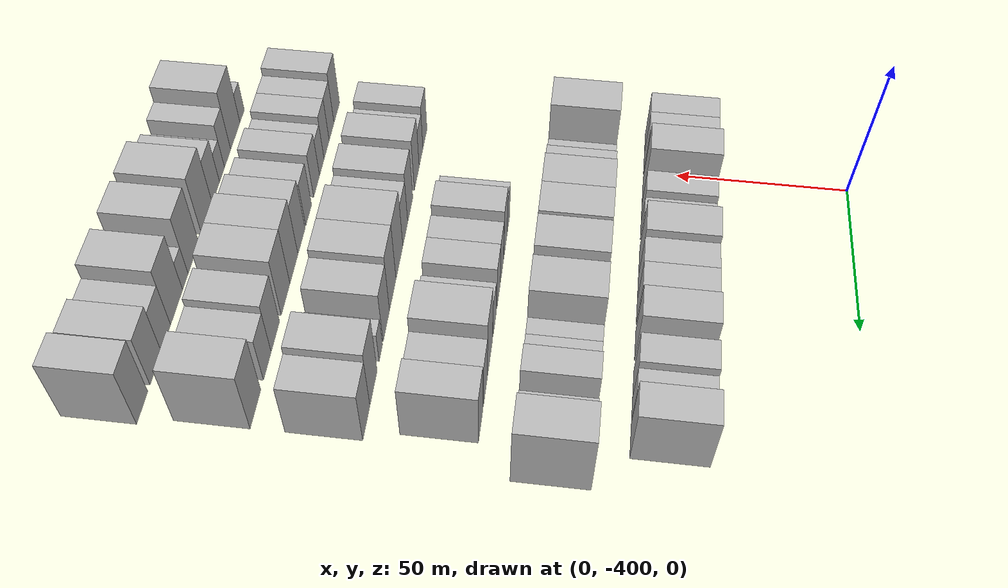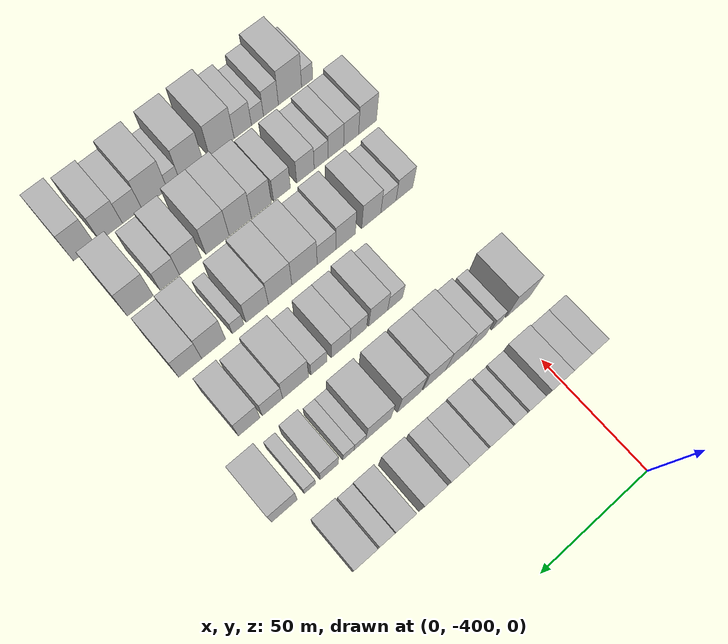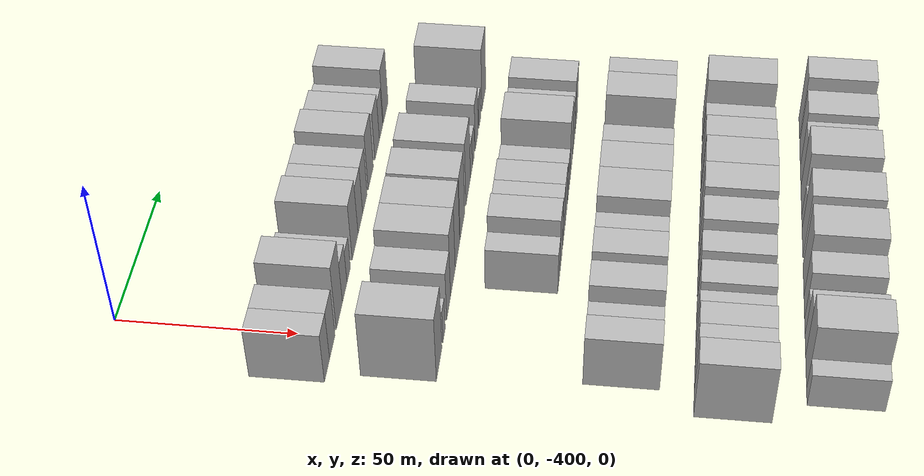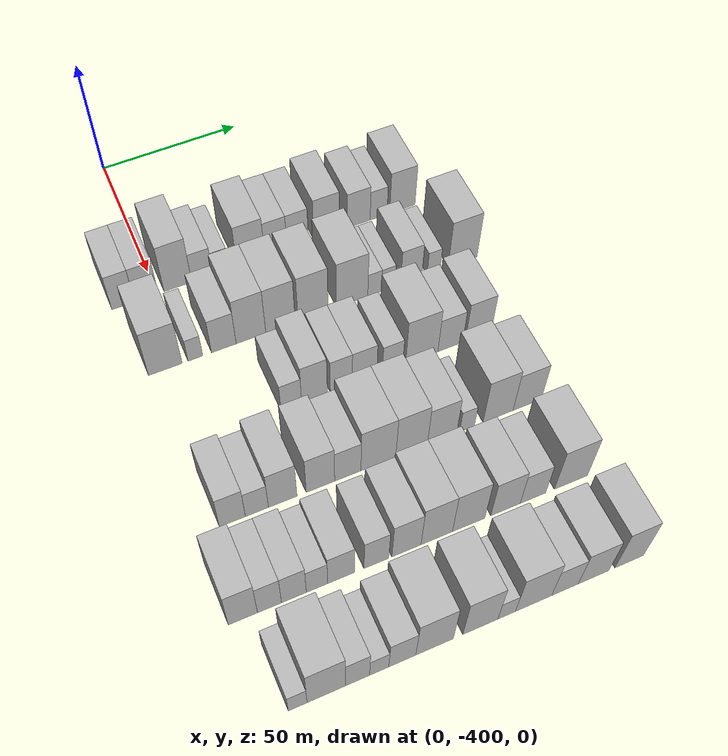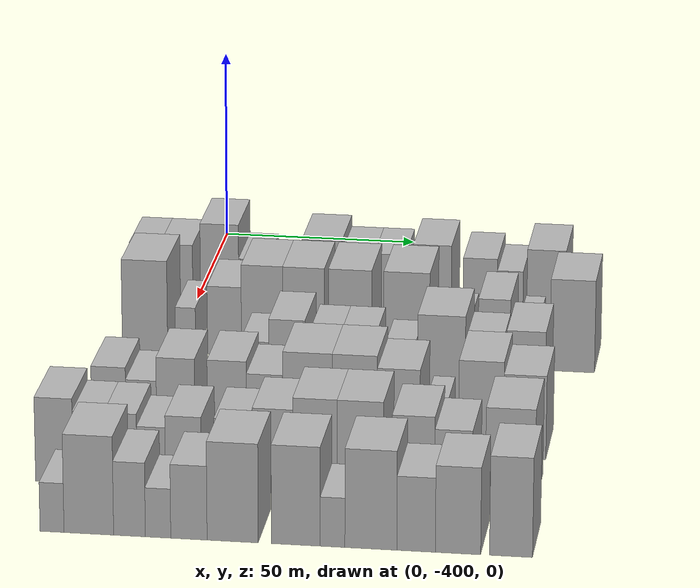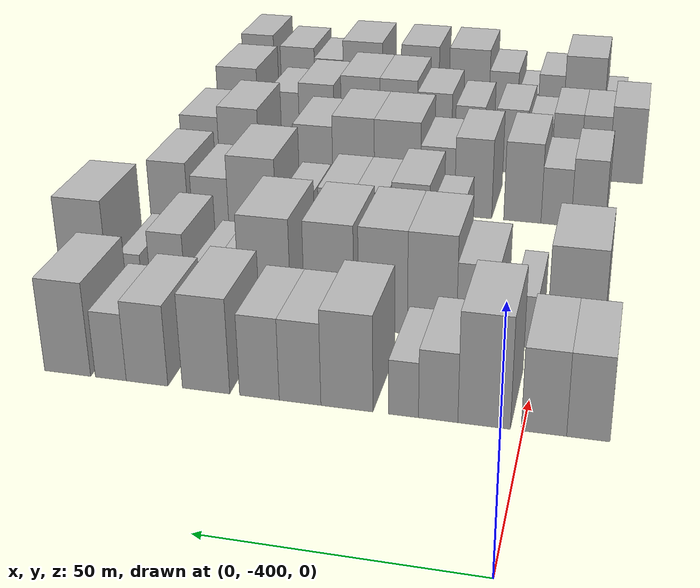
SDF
<sdf version="1.6">
 <world name="default">
  <model name="building_11">
   <static>1</static>
   <pose>50.0000 -411.8984 0 0.000000 0.000000 0.000000</pose>
   <link name="link">
    <pose>0 0 9.00 0 0 0</pose>
    <collision name="collision"><geometry><box><size>20.0000 7.8866 18.0000</size></box></geometry></collision>
    <visual name="visual">
     <cast_shadows>0</cast_shadows>
     <geometry><box><size>20.0000 7.8866 18.0000</size></box></geometry>
     <material>
      <script>
       <uri>model://HANNAS_wall/materials/scripts</uri>
       <uri>model://HANNAS_wall/materials/textures</uri>
       <name>vrc/HANNAS_wall</name>
      </script>
     </material>
    </visual>
   </link>
  </model>
  <model name="building_12">
   <static>1</static>
   <pose>50.0000 -403.7745 0 0.000000 0.000000 0.000000</pose>
   <link name="link">
    <pose>0 0 9.00 0 0 0</pose>
    <collision name="collision"><geometry><box><size>20.0000 8.3612 18.0000</size></box></geometry></collision>
    <visual name="visual">
     <cast_shadows>0</cast_shadows>
     <geometry><box><size>20.0000 8.3612 18.0000</size></box></geometry>
     <material>
      <script>
       <uri>model://HANNAS_wall/materials/scripts</uri>
       <uri>model://HANNAS_wall/materials/textures</uri>
       <name>vrc/HANNAS_wall</name>
      </script>
     </material>
    </visual>
   </link>
  </model>
  <model name="building_13">
   <static>1</static>
   <pose>50.0000 -392.6728 0 0.000000 0.000000 0.000000</pose>
   <link name="link">
    <pose>0 0 12.00 0 0 0</pose>
    <collision name="collision"><geometry><box><size>20.0000 9.8420 24.0000</size></box></geometry></collision>
    <visual name="visual">
     <cast_shadows>0</cast_shadows>
     <geometry><box><size>20.0000 9.8420 24.0000</size></box></geometry>
     <material>
      <script>
       <uri>model://HANNAS_wall/materials/scripts</uri>
       <uri>model://HANNAS_wall/materials/textures</uri>
       <name>vrc/HANNAS_wall</name>
      </script>
     </material>
    </visual>
   </link>
  </model>
  <model name="building_14">
   <static>1</static>
   <pose>50.0000 -384.0096 0 0.000000 0.000000 0.000000</pose>
   <link name="link">
    <pose>0 0 7.50 0 0 0</pose>
    <collision name="collision"><geometry><box><size>20.0000 7.4845 15.0000</size></box></geometry></collision>
    <visual name="visual">
     <cast_shadows>0</cast_shadows>
     <geometry><box><size>20.0000 7.4845 15.0000</size></box></geometry>
     <material>
      <script>
       <uri>model://HANNAS_wall/materials/scripts</uri>
       <uri>model://HANNAS_wall/materials/textures</uri>
       <name>vrc/HANNAS_wall</name>
      </script>
     </material>
    </visual>
   </link>
  </model>
  <model name="building_15">
   <static>1</static>
   <pose>50.0000 -377.3860 0 0.000000 0.000000 0.000000</pose>
   <link name="link">
    <pose>0 0 6.00 0 0 0</pose>
    <collision name="collision"><geometry><box><size>20.0000 5.7627 12.0000</size></box></geometry></collision>
    <visual name="visual">
     <cast_shadows>0</cast_shadows>
     <geometry><box><size>20.0000 5.7627 12.0000</size></box></geometry>
     <material>
      <script>
       <uri>model://HANNAS_wall/materials/scripts</uri>
       <uri>model://HANNAS_wall/materials/textures</uri>
       <name>vrc/HANNAS_wall</name>
      </script>
     </material>
    </visual>
   </link>
  </model>
  <model name="building_16">
   <static>1</static>
   <pose>50.0000 -366.4196 0 0.000000 0.000000 0.000000</pose>
   <link name="link">
    <pose>0 0 10.50 0 0 0</pose>
    <collision name="collision"><geometry><box><size>20.0000 10.1700 21.0000</size></box></geometry></collision>
    <visual name="visual">
     <cast_shadows>0</cast_shadows>
     <geometry><box><size>20.0000 10.1700 21.0000</size></box></geometry>
     <material>
      <script>
       <uri>model://HANNAS_wall/materials/scripts</uri>
       <uri>model://HANNAS_wall/materials/textures</uri>
       <name>vrc/HANNAS_wall</name>
      </script>
     </material>
    </visual>
   </link>
  </model>
  <model name="building_17">
   <static>1</static>
   <pose>50.0000 -357.2056 0 0.000000 0.000000 0.000000</pose>
   <link name="link">
    <pose>0 0 9.00 0 0 0</pose>
    <collision name="collision"><geometry><box><size>20.0000 8.2580 18.0000</size></box></geometry></collision>
    <visual name="visual">
     <cast_shadows>0</cast_shadows>
     <geometry><box><size>20.0000 8.2580 18.0000</size></box></geometry>
     <material>
      <script>
       <uri>model://HANNAS_wall/materials/scripts</uri>
       <uri>model://HANNAS_wall/materials/textures</uri>
       <name>vrc/HANNAS_wall</name>
      </script>
     </material>
    </visual>
   </link>
  </model>
  <model name="building_18">
   <static>1</static>
   <pose>50.0000 -349.0962 0 0.000000 0.000000 0.000000</pose>
   <link name="link">
    <pose>0 0 9.00 0 0 0</pose>
    <collision name="collision"><geometry><box><size>20.0000 7.9607 18.0000</size></box></geometry></collision>
    <visual name="visual">
     <cast_shadows>0</cast_shadows>
     <geometry><box><size>20.0000 7.9607 18.0000</size></box></geometry>
     <material>
      <script>
       <uri>model://HANNAS_wall/materials/scripts</uri>
       <uri>model://HANNAS_wall/materials/textures</uri>
       <name>vrc/HANNAS_wall</name>
      </script>
     </material>
    </visual>
   </link>
  </model>
  <model name="building_19">
   <static>1</static>
   <pose>50.0000 -338.2764 0 0.000000 0.000000 0.000000</pose>
   <link name="link">
    <pose>0 0 10.50 0 0 0</pose>
    <collision name="collision"><geometry><box><size>20.0000 9.6788 21.0000</size></box></geometry></collision>
    <visual name="visual">
     <cast_shadows>0</cast_shadows>
     <geometry><box><size>20.0000 9.6788 21.0000</size></box></geometry>
     <material>
      <script>
       <uri>model://HANNAS_wall/materials/scripts</uri>
       <uri>model://HANNAS_wall/materials/textures</uri>
       <name>vrc/HANNAS_wall</name>
      </script>
     </material>
    </visual>
   </link>
  </model>
  <model name="building_20">
   <static>1</static>
   <pose>50.0000 -326.1015 0 0.000000 0.000000 0.000000</pose>
   <link name="link">
    <pose>0 0 9.00 0 0 0</pose>
    <collision name="collision"><geometry><box><size>20.0000 8.6711 18.0000</size></box></geometry></collision>
    <visual name="visual">
     <cast_shadows>0</cast_shadows>
     <geometry><box><size>20.0000 8.6711 18.0000</size></box></geometry>
     <material>
      <script>
       <uri>model://HANNAS_wall/materials/scripts</uri>
       <uri>model://HANNAS_wall/materials/textures</uri>
       <name>vrc/HANNAS_wall</name>
      </script>
     </material>
    </visual>
   </link>
  </model>
  <model name="building_21">
   <static>1</static>
   <pose>50.0000 -318.5105 0 0.000000 0.000000 0.000000</pose>
   <link name="link">
    <pose>0 0 7.50 0 0 0</pose>
    <collision name="collision"><geometry><box><size>20.0000 6.5108 15.0000</size></box></geometry></collision>
    <visual name="visual">
     <cast_shadows>0</cast_shadows>
     <geometry><box><size>20.0000 6.5108 15.0000</size></box></geometry>
     <material>
      <script>
       <uri>model://HANNAS_wall/materials/scripts</uri>
       <uri>model://HANNAS_wall/materials/textures</uri>
       <name>vrc/HANNAS_wall</name>
      </script>
     </material>
    </visual>
   </link>
  </model>
  <model name="building_22">
   <static>1</static>
   <pose>50.0000 -309.3526 0 0.000000 0.000000 0.000000</pose>
   <link name="link">
    <pose>0 0 10.50 0 0 0</pose>
    <collision name="collision"><geometry><box><size>20.0000 9.8051 21.0000</size></box></geometry></collision>
    <visual name="visual">
     <cast_shadows>0</cast_shadows>
     <geometry><box><size>20.0000 9.8051 21.0000</size></box></geometry>
     <material>
      <script>
       <uri>model://HANNAS_wall/materials/scripts</uri>
       <uri>model://HANNAS_wall/materials/textures</uri>
       <name>vrc/HANNAS_wall</name>
      </script>
     </material>
    </visual>
   </link>
  </model>
  <model name="building_124">
   <static>1</static>
   <pose>79.0000 -406.9937 0 0.000000 0.000000 0.000000</pose>
   <link name="link">
    <pose>0 0 12.00 0 0 0</pose>
    <collision name="collision"><geometry><box><size>20.0000 11.4341 24.0000</size></box></geometry></collision>
    <visual name="visual">
     <cast_shadows>0</cast_shadows>
     <geometry><box><size>20.0000 11.4341 24.0000</size></box></geometry>
     <material>
      <script>
       <uri>model://HANNAS_wall/materials/scripts</uri>
       <uri>model://HANNAS_wall/materials/textures</uri>
       <name>vrc/HANNAS_wall</name>
      </script>
     </material>
    </visual>
   </link>
  </model>
  <model name="building_125">
   <static>1</static>
   <pose>79.0000 -396.7532 0 0.000000 0.000000 0.000000</pose>
   <link name="link">
    <pose>0 0 6.00 0 0 0</pose>
    <collision name="collision"><geometry><box><size>20.0000 5.0468 12.0000</size></box></geometry></collision>
    <visual name="visual">
     <cast_shadows>0</cast_shadows>
     <geometry><box><size>20.0000 5.0468 12.0000</size></box></geometry>
     <material>
      <script>
       <uri>model://HANNAS_wall/materials/scripts</uri>
       <uri>model://HANNAS_wall/materials/textures</uri>
       <name>vrc/HANNAS_wall</name>
      </script>
     </material>
    </visual>
   </link>
  </model>
  <model name="building_126">
   <static>1</static>
   <pose>79.0000 -386.9456 0 0.000000 0.000000 0.000000</pose>
   <link name="link">
    <pose>0 0 9.00 0 0 0</pose>
    <collision name="collision"><geometry><box><size>20.0000 8.5684 18.0000</size></box></geometry></collision>
    <visual name="visual">
     <cast_shadows>0</cast_shadows>
     <geometry><box><size>20.0000 8.5684 18.0000</size></box></geometry>
     <material>
      <script>
       <uri>model://HANNAS_wall/materials/scripts</uri>
       <uri>model://HANNAS_wall/materials/textures</uri>
       <name>vrc/HANNAS_wall</name>
      </script>
     </material>
    </visual>
   </link>
  </model>
  <model name="building_127">
   <static>1</static>
   <pose>79.0000 -377.4819 0 0.000000 0.000000 0.000000</pose>
   <link name="link">
    <pose>0 0 12.00 0 0 0</pose>
    <collision name="collision"><geometry><box><size>20.0000 10.3590 24.0000</size></box></geometry></collision>
    <visual name="visual">
     <cast_shadows>0</cast_shadows>
     <geometry><box><size>20.0000 10.3590 24.0000</size></box></geometry>
     <material>
      <script>
       <uri>model://HANNAS_wall/materials/scripts</uri>
       <uri>model://HANNAS_wall/materials/textures</uri>
       <name>vrc/HANNAS_wall</name>
      </script>
     </material>
    </visual>
   </link>
  </model>
  <model name="building_128">
   <static>1</static>
   <pose>79.0000 -367.0713 0 0.000000 0.000000 0.000000</pose>
   <link name="link">
    <pose>0 0 12.00 0 0 0</pose>
    <collision name="collision"><geometry><box><size>20.0000 10.4622 24.0000</size></box></geometry></collision>
    <visual name="visual">
     <cast_shadows>0</cast_shadows>
     <geometry><box><size>20.0000 10.4622 24.0000</size></box></geometry>
     <material>
      <script>
       <uri>model://HANNAS_wall/materials/scripts</uri>
       <uri>model://HANNAS_wall/materials/textures</uri>
       <name>vrc/HANNAS_wall</name>
      </script>
     </material>
    </visual>
   </link>
  </model>
  <model name="building_129">
   <static>1</static>
   <pose>79.0000 -355.4506 0 0.000000 0.000000 0.000000</pose>
   <link name="link">
    <pose>0 0 12.00 0 0 0</pose>
    <collision name="collision"><geometry><box><size>20.0000 10.7792 24.0000</size></box></geometry></collision>
    <visual name="visual">
     <cast_shadows>0</cast_shadows>
     <geometry><box><size>20.0000 10.7792 24.0000</size></box></geometry>
     <material>
      <script>
       <uri>model://HANNAS_wall/materials/scripts</uri>
       <uri>model://HANNAS_wall/materials/textures</uri>
       <name>vrc/HANNAS_wall</name>
      </script>
     </material>
    </visual>
   </link>
  </model>
  <model name="building_130">
   <static>1</static>
   <pose>79.0000 -341.3512 0 0.000000 0.000000 0.000000</pose>
   <link name="link">
    <pose>0 0 12.00 0 0 0</pose>
    <collision name="collision"><geometry><box><size>20.0000 11.4196 24.0000</size></box></geometry></collision>
    <visual name="visual">
     <cast_shadows>0</cast_shadows>
     <geometry><box><size>20.0000 11.4196 24.0000</size></box></geometry>
     <material>
      <script>
       <uri>model://HANNAS_wall/materials/scripts</uri>
       <uri>model://HANNAS_wall/materials/textures</uri>
       <name>vrc/HANNAS_wall</name>
      </script>
     </material>
    </visual>
   </link>
  </model>
  <model name="building_131">
   <static>1</static>
   <pose>79.0000 -333.0664 0 0.000000 0.000000 0.000000</pose>
   <link name="link">
    <pose>0 0 6.00 0 0 0</pose>
    <collision name="collision"><geometry><box><size>20.0000 5.1501 12.0000</size></box></geometry></collision>
    <visual name="visual">
     <cast_shadows>0</cast_shadows>
     <geometry><box><size>20.0000 5.1501 12.0000</size></box></geometry>
     <material>
      <script>
       <uri>model://HANNAS_wall/materials/scripts</uri>
       <uri>model://HANNAS_wall/materials/textures</uri>
       <name>vrc/HANNAS_wall</name>
      </script>
     </material>
    </visual>
   </link>
  </model>
  <model name="building_132">
   <static>1</static>
   <pose>79.0000 -328.0197 0 0.000000 0.000000 0.000000</pose>
   <link name="link">
    <pose>0 0 6.00 0 0 0</pose>
    <collision name="collision"><geometry><box><size>20.0000 4.9432 12.0000</size></box></geometry></collision>
    <visual name="visual">
     <cast_shadows>0</cast_shadows>
     <geometry><box><size>20.0000 4.9432 12.0000</size></box></geometry>
     <material>
      <script>
       <uri>model://HANNAS_wall/materials/scripts</uri>
       <uri>model://HANNAS_wall/materials/textures</uri>
       <name>vrc/HANNAS_wall</name>
      </script>
     </material>
    </visual>
   </link>
  </model>
  <model name="building_133">
   <static>1</static>
   <pose>79.0000 -319.5810 0 0.000000 0.000000 0.000000</pose>
   <link name="link">
    <pose>0 0 9.00 0 0 0</pose>
    <collision name="collision"><geometry><box><size>20.0000 7.9342 18.0000</size></box></geometry></collision>
    <visual name="visual">
     <cast_shadows>0</cast_shadows>
     <geometry><box><size>20.0000 7.9342 18.0000</size></box></geometry>
     <material>
      <script>
       <uri>model://HANNAS_wall/materials/scripts</uri>
       <uri>model://HANNAS_wall/materials/textures</uri>
       <name>vrc/HANNAS_wall</name>
      </script>
     </material>
    </visual>
   </link>
  </model>
  <model name="building_134">
   <static>1</static>
   <pose>79.0000 -311.1672 0 0.000000 0.000000 0.000000</pose>
   <link name="link">
    <pose>0 0 6.00 0 0 0</pose>
    <collision name="collision"><geometry><box><size>20.0000 4.8934 12.0000</size></box></geometry></collision>
    <visual name="visual">
     <cast_shadows>0</cast_shadows>
     <geometry><box><size>20.0000 4.8934 12.0000</size></box></geometry>
     <material>
      <script>
       <uri>model://HANNAS_wall/materials/scripts</uri>
       <uri>model://HANNAS_wall/materials/textures</uri>
       <name>vrc/HANNAS_wall</name>
      </script>
     </material>
    </visual>
   </link>
  </model>
  <model name="building_135">
   <static>1</static>
   <pose>79.0000 -300.2051 0 0.000000 0.000000 0.000000</pose>
   <link name="link">
    <pose>0 0 12.00 0 0 0</pose>
    <collision name="collision"><geometry><box><size>20.0000 11.0306 24.0000</size></box></geometry></collision>
    <visual name="visual">
     <cast_shadows>0</cast_shadows>
     <geometry><box><size>20.0000 11.0306 24.0000</size></box></geometry>
     <material>
      <script>
       <uri>model://HANNAS_wall/materials/scripts</uri>
       <uri>model://HANNAS_wall/materials/textures</uri>
       <name>vrc/HANNAS_wall</name>
      </script>
     </material>
    </visual>
   </link>
  </model>
  <model name="building_238">
   <static>1</static>
   <pose>108.0000 -375.0337 0 0.000000 0.000000 0.000000</pose>
   <link name="link">
    <pose>0 0 7.50 0 0 0</pose>
    <collision name="collision"><geometry><box><size>20.0000 7.0417 15.0000</size></box></geometry></collision>
    <visual name="visual">
     <cast_shadows>0</cast_shadows>
     <geometry><box><size>20.0000 7.0417 15.0000</size></box></geometry>
     <material>
      <script>
       <uri>model://HANNAS_wall/materials/scripts</uri>
       <uri>model://HANNAS_wall/materials/textures</uri>
       <name>vrc/HANNAS_wall</name>
      </script>
     </material>
    </visual>
   </link>
  </model>
  <model name="building_239">
   <static>1</static>
   <pose>108.0000 -367.0894 0 0.000000 0.000000 0.000000</pose>
   <link name="link">
    <pose>0 0 10.50 0 0 0</pose>
    <collision name="collision"><geometry><box><size>20.0000 8.8468 21.0000</size></box></geometry></collision>
    <visual name="visual">
     <cast_shadows>0</cast_shadows>
     <geometry><box><size>20.0000 8.8468 21.0000</size></box></geometry>
     <material>
      <script>
       <uri>model://HANNAS_wall/materials/scripts</uri>
       <uri>model://HANNAS_wall/materials/textures</uri>
       <name>vrc/HANNAS_wall</name>
      </script>
     </material>
    </visual>
   </link>
  </model>
  <model name="building_240">
   <static>1</static>
   <pose>108.0000 -357.8525 0 0.000000 0.000000 0.000000</pose>
   <link name="link">
    <pose>0 0 9.00 0 0 0</pose>
    <collision name="collision"><geometry><box><size>20.0000 7.6271 18.0000</size></box></geometry></collision>
    <visual name="visual">
     <cast_shadows>0</cast_shadows>
     <geometry><box><size>20.0000 7.6271 18.0000</size></box></geometry>
     <material>
      <script>
       <uri>model://HANNAS_wall/materials/scripts</uri>
       <uri>model://HANNAS_wall/materials/textures</uri>
       <name>vrc/HANNAS_wall</name>
      </script>
     </material>
    </visual>
   </link>
  </model>
  <model name="building_241">
   <static>1</static>
   <pose>108.0000 -349.7560 0 0.000000 0.000000 0.000000</pose>
   <link name="link">
    <pose>0 0 9.00 0 0 0</pose>
    <collision name="collision"><geometry><box><size>20.0000 8.5658 18.0000</size></box></geometry></collision>
    <visual name="visual">
     <cast_shadows>0</cast_shadows>
     <geometry><box><size>20.0000 8.5658 18.0000</size></box></geometry>
     <material>
      <script>
       <uri>model://HANNAS_wall/materials/scripts</uri>
       <uri>model://HANNAS_wall/materials/textures</uri>
       <name>vrc/HANNAS_wall</name>
      </script>
     </material>
    </visual>
   </link>
  </model>
  <model name="building_242">
   <static>1</static>
   <pose>108.0000 -339.8674 0 0.000000 0.000000 0.000000</pose>
   <link name="link">
    <pose>0 0 7.50 0 0 0</pose>
    <collision name="collision"><geometry><box><size>20.0000 7.2113 15.0000</size></box></geometry></collision>
    <visual name="visual">
     <cast_shadows>0</cast_shadows>
     <geometry><box><size>20.0000 7.2113 15.0000</size></box></geometry>
     <material>
      <script>
       <uri>model://HANNAS_wall/materials/scripts</uri>
       <uri>model://HANNAS_wall/materials/textures</uri>
       <name>vrc/HANNAS_wall</name>
      </script>
     </material>
    </visual>
   </link>
  </model>
  <model name="building_243">
   <static>1</static>
   <pose>108.0000 -329.4605 0 0.000000 0.000000 0.000000</pose>
   <link name="link">
    <pose>0 0 12.00 0 0 0</pose>
    <collision name="collision"><geometry><box><size>20.0000 11.6025 24.0000</size></box></geometry></collision>
    <visual name="visual">
     <cast_shadows>0</cast_shadows>
     <geometry><box><size>20.0000 11.6025 24.0000</size></box></geometry>
     <material>
      <script>
       <uri>model://HANNAS_wall/materials/scripts</uri>
       <uri>model://HANNAS_wall/materials/textures</uri>
       <name>vrc/HANNAS_wall</name>
      </script>
     </material>
    </visual>
   </link>
  </model>
  <model name="building_244">
   <static>1</static>
   <pose>108.0000 -319.1672 0 0.000000 0.000000 0.000000</pose>
   <link name="link">
    <pose>0 0 9.00 0 0 0</pose>
    <collision name="collision"><geometry><box><size>20.0000 8.9841 18.0000</size></box></geometry></collision>
    <visual name="visual">
     <cast_shadows>0</cast_shadows>
     <geometry><box><size>20.0000 8.9841 18.0000</size></box></geometry>
     <material>
      <script>
       <uri>model://HANNAS_wall/materials/scripts</uri>
       <uri>model://HANNAS_wall/materials/textures</uri>
       <name>vrc/HANNAS_wall</name>
      </script>
     </material>
    </visual>
   </link>
  </model>
  <model name="building_245">
   <static>1</static>
   <pose>108.0000 -308.9551 0 0.000000 0.000000 0.000000</pose>
   <link name="link">
    <pose>0 0 10.50 0 0 0</pose>
    <collision name="collision"><geometry><box><size>20.0000 9.4402 21.0000</size></box></geometry></collision>
    <visual name="visual">
     <cast_shadows>0</cast_shadows>
     <geometry><box><size>20.0000 9.4402 21.0000</size></box></geometry>
     <material>
      <script>
       <uri>model://HANNAS_wall/materials/scripts</uri>
       <uri>model://HANNAS_wall/materials/textures</uri>
       <name>vrc/HANNAS_wall</name>
      </script>
     </material>
    </visual>
   </link>
  </model>
  <model name="building_345">
   <static>1</static>
   <pose>137.0000 -405.7316 0 0.000000 0.000000 0.000000</pose>
   <link name="link">
    <pose>0 0 9.00 0 0 0</pose>
    <collision name="collision"><geometry><box><size>20.0000 8.2675 18.0000</size></box></geometry></collision>
    <visual name="visual">
     <cast_shadows>0</cast_shadows>
     <geometry><box><size>20.0000 8.2675 18.0000</size></box></geometry>
     <material>
      <script>
       <uri>model://HANNAS_wall/materials/scripts</uri>
       <uri>model://HANNAS_wall/materials/textures</uri>
       <name>vrc/HANNAS_wall</name>
      </script>
     </material>
    </visual>
   </link>
  </model>
  <model name="building_346">
   <static>1</static>
   <pose>137.0000 -397.8987 0 0.000000 0.000000 0.000000</pose>
   <link name="link">
    <pose>0 0 7.50 0 0 0</pose>
    <collision name="collision"><geometry><box><size>20.0000 7.3982 15.0000</size></box></geometry></collision>
    <visual name="visual">
     <cast_shadows>0</cast_shadows>
     <geometry><box><size>20.0000 7.3982 15.0000</size></box></geometry>
     <material>
      <script>
       <uri>model://HANNAS_wall/materials/scripts</uri>
       <uri>model://HANNAS_wall/materials/textures</uri>
       <name>vrc/HANNAS_wall</name>
      </script>
     </material>
    </visual>
   </link>
  </model>
  <model name="building_347">
   <static>1</static>
   <pose>137.0000 -389.5832 0 0.000000 0.000000 0.000000</pose>
   <link name="link">
    <pose>0 0 10.50 0 0 0</pose>
    <collision name="collision"><geometry><box><size>20.0000 9.2328 21.0000</size></box></geometry></collision>
    <visual name="visual">
     <cast_shadows>0</cast_shadows>
     <geometry><box><size>20.0000 9.2328 21.0000</size></box></geometry>
     <material>
      <script>
       <uri>model://HANNAS_wall/materials/scripts</uri>
       <uri>model://HANNAS_wall/materials/textures</uri>
       <name>vrc/HANNAS_wall</name>
      </script>
     </material>
    </visual>
   </link>
  </model>
  <model name="building_348">
   <static>1</static>
   <pose>137.0000 -377.2858 0 0.000000 0.000000 0.000000</pose>
   <link name="link">
    <pose>0 0 10.50 0 0 0</pose>
    <collision name="collision"><geometry><box><size>20.0000 9.3620 21.0000</size></box></geometry></collision>
    <visual name="visual">
     <cast_shadows>0</cast_shadows>
     <geometry><box><size>20.0000 9.3620 21.0000</size></box></geometry>
     <material>
      <script>
       <uri>model://HANNAS_wall/materials/scripts</uri>
       <uri>model://HANNAS_wall/materials/textures</uri>
       <name>vrc/HANNAS_wall</name>
      </script>
     </material>
    </visual>
   </link>
  </model>
  <model name="building_349">
   <static>1</static>
   <pose>137.0000 -368.2492 0 0.000000 0.000000 0.000000</pose>
   <link name="link">
    <pose>0 0 9.00 0 0 0</pose>
    <collision name="collision"><geometry><box><size>20.0000 8.7112 18.0000</size></box></geometry></collision>
    <visual name="visual">
     <cast_shadows>0</cast_shadows>
     <geometry><box><size>20.0000 8.7112 18.0000</size></box></geometry>
     <material>
      <script>
       <uri>model://HANNAS_wall/materials/scripts</uri>
       <uri>model://HANNAS_wall/materials/textures</uri>
       <name>vrc/HANNAS_wall</name>
      </script>
     </material>
    </visual>
   </link>
  </model>
  <model name="building_350">
   <static>1</static>
   <pose>137.0000 -358.0191 0 0.000000 0.000000 0.000000</pose>
   <link name="link">
    <pose>0 0 12.00 0 0 0</pose>
    <collision name="collision"><geometry><box><size>20.0000 11.7490 24.0000</size></box></geometry></collision>
    <visual name="visual">
     <cast_shadows>0</cast_shadows>
     <geometry><box><size>20.0000 11.7490 24.0000</size></box></geometry>
     <material>
      <script>
       <uri>model://HANNAS_wall/materials/scripts</uri>
       <uri>model://HANNAS_wall/materials/textures</uri>
       <name>vrc/HANNAS_wall</name>
      </script>
     </material>
    </visual>
   </link>
  </model>
  <model name="building_351">
   <static>1</static>
   <pose>137.0000 -346.7696 0 0.000000 0.000000 0.000000</pose>
   <link name="link">
    <pose>0 0 12.00 0 0 0</pose>
    <collision name="collision"><geometry><box><size>20.0000 10.7500 24.0000</size></box></geometry></collision>
    <visual name="visual">
     <cast_shadows>0</cast_shadows>
     <geometry><box><size>20.0000 10.7500 24.0000</size></box></geometry>
     <material>
      <script>
       <uri>model://HANNAS_wall/materials/scripts</uri>
       <uri>model://HANNAS_wall/materials/textures</uri>
       <name>vrc/HANNAS_wall</name>
      </script>
     </material>
    </visual>
   </link>
  </model>
  <model name="building_352">
   <static>1</static>
   <pose>137.0000 -336.3231 0 0.000000 0.000000 0.000000</pose>
   <link name="link">
    <pose>0 0 10.50 0 0 0</pose>
    <collision name="collision"><geometry><box><size>20.0000 10.1429 21.0000</size></box></geometry></collision>
    <visual name="visual">
     <cast_shadows>0</cast_shadows>
     <geometry><box><size>20.0000 10.1429 21.0000</size></box></geometry>
     <material>
      <script>
       <uri>model://HANNAS_wall/materials/scripts</uri>
       <uri>model://HANNAS_wall/materials/textures</uri>
       <name>vrc/HANNAS_wall</name>
      </script>
     </material>
    </visual>
   </link>
  </model>
  <model name="building_353">
   <static>1</static>
   <pose>137.0000 -327.6669 0 0.000000 0.000000 0.000000</pose>
   <link name="link">
    <pose>0 0 6.00 0 0 0</pose>
    <collision name="collision"><geometry><box><size>20.0000 5.1695 12.0000</size></box></geometry></collision>
    <visual name="visual">
     <cast_shadows>0</cast_shadows>
     <geometry><box><size>20.0000 5.1695 12.0000</size></box></geometry>
     <material>
      <script>
       <uri>model://HANNAS_wall/materials/scripts</uri>
       <uri>model://HANNAS_wall/materials/textures</uri>
       <name>vrc/HANNAS_wall</name>
      </script>
     </material>
    </visual>
   </link>
  </model>
  <model name="building_354">
   <static>1</static>
   <pose>137.0000 -316.7724 0 0.000000 0.000000 0.000000</pose>
   <link name="link">
    <pose>0 0 12.00 0 0 0</pose>
    <collision name="collision"><geometry><box><size>20.0000 10.6195 24.0000</size></box></geometry></collision>
    <visual name="visual">
     <cast_shadows>0</cast_shadows>
     <geometry><box><size>20.0000 10.6195 24.0000</size></box></geometry>
     <material>
      <script>
       <uri>model://HANNAS_wall/materials/scripts</uri>
       <uri>model://HANNAS_wall/materials/textures</uri>
       <name>vrc/HANNAS_wall</name>
      </script>
     </material>
    </visual>
   </link>
  </model>
  <model name="building_355">
   <static>1</static>
   <pose>137.0000 -306.4292 0 0.000000 0.000000 0.000000</pose>
   <link name="link">
    <pose>0 0 10.50 0 0 0</pose>
    <collision name="collision"><geometry><box><size>20.0000 10.0669 21.0000</size></box></geometry></collision>
    <visual name="visual">
     <cast_shadows>0</cast_shadows>
     <geometry><box><size>20.0000 10.0669 21.0000</size></box></geometry>
     <material>
      <script>
       <uri>model://HANNAS_wall/materials/scripts</uri>
       <uri>model://HANNAS_wall/materials/textures</uri>
       <name>vrc/HANNAS_wall</name>
      </script>
     </material>
    </visual>
   </link>
  </model>
  <model name="building_462">
   <static>1</static>
   <pose>166.0000 -413.4314 0 0.000000 0.000000 0.000000</pose>
   <link name="link">
    <pose>0 0 10.50 0 0 0</pose>
    <collision name="collision"><geometry><box><size>20.0000 8.8658 21.0000</size></box></geometry></collision>
    <visual name="visual">
     <cast_shadows>0</cast_shadows>
     <geometry><box><size>20.0000 8.8658 21.0000</size></box></geometry>
     <material>
      <script>
       <uri>model://HANNAS_wall/materials/scripts</uri>
       <uri>model://HANNAS_wall/materials/textures</uri>
       <name>vrc/HANNAS_wall</name>
      </script>
     </material>
    </visual>
   </link>
  </model>
  <model name="building_463">
   <static>1</static>
   <pose>166.0000 -405.3016 0 0.000000 0.000000 0.000000</pose>
   <link name="link">
    <pose>0 0 9.00 0 0 0</pose>
    <collision name="collision"><geometry><box><size>20.0000 7.3937 18.0000</size></box></geometry></collision>
    <visual name="visual">
     <cast_shadows>0</cast_shadows>
     <geometry><box><size>20.0000 7.3937 18.0000</size></box></geometry>
     <material>
      <script>
       <uri>model://HANNAS_wall/materials/scripts</uri>
       <uri>model://HANNAS_wall/materials/textures</uri>
       <name>vrc/HANNAS_wall</name>
      </script>
     </material>
    </visual>
   </link>
  </model>
  <model name="building_464">
   <static>1</static>
   <pose>166.0000 -397.7545 0 0.000000 0.000000 0.000000</pose>
   <link name="link">
    <pose>0 0 9.00 0 0 0</pose>
    <collision name="collision"><geometry><box><size>20.0000 7.7004 18.0000</size></box></geometry></collision>
    <visual name="visual">
     <cast_shadows>0</cast_shadows>
     <geometry><box><size>20.0000 7.7004 18.0000</size></box></geometry>
     <material>
      <script>
       <uri>model://HANNAS_wall/materials/scripts</uri>
       <uri>model://HANNAS_wall/materials/textures</uri>
       <name>vrc/HANNAS_wall</name>
      </script>
     </material>
    </visual>
   </link>
  </model>
  <model name="building_465">
   <static>1</static>
   <pose>166.0000 -390.5687 0 0.000000 0.000000 0.000000</pose>
   <link name="link">
    <pose>0 0 7.50 0 0 0</pose>
    <collision name="collision"><geometry><box><size>20.0000 6.6713 15.0000</size></box></geometry></collision>
    <visual name="visual">
     <cast_shadows>0</cast_shadows>
     <geometry><box><size>20.0000 6.6713 15.0000</size></box></geometry>
     <material>
      <script>
       <uri>model://HANNAS_wall/materials/scripts</uri>
       <uri>model://HANNAS_wall/materials/textures</uri>
       <name>vrc/HANNAS_wall</name>
      </script>
     </material>
    </visual>
   </link>
  </model>
  <model name="building_466">
   <static>1</static>
   <pose>166.0000 -383.0170 0 0.000000 0.000000 0.000000</pose>
   <link name="link">
    <pose>0 0 9.00 0 0 0</pose>
    <collision name="collision"><geometry><box><size>20.0000 8.4320 18.0000</size></box></geometry></collision>
    <visual name="visual">
     <cast_shadows>0</cast_shadows>
     <geometry><box><size>20.0000 8.4320 18.0000</size></box></geometry>
     <material>
      <script>
       <uri>model://HANNAS_wall/materials/scripts</uri>
       <uri>model://HANNAS_wall/materials/textures</uri>
       <name>vrc/HANNAS_wall</name>
      </script>
     </material>
    </visual>
   </link>
  </model>
  <model name="building_467">
   <static>1</static>
   <pose>166.0000 -371.8174 0 0.000000 0.000000 0.000000</pose>
   <link name="link">
    <pose>0 0 9.00 0 0 0</pose>
    <collision name="collision"><geometry><box><size>20.0000 7.9673 18.0000</size></box></geometry></collision>
    <visual name="visual">
     <cast_shadows>0</cast_shadows>
     <geometry><box><size>20.0000 7.9673 18.0000</size></box></geometry>
     <material>
      <script>
       <uri>model://HANNAS_wall/materials/scripts</uri>
       <uri>model://HANNAS_wall/materials/textures</uri>
       <name>vrc/HANNAS_wall</name>
      </script>
     </material>
    </visual>
   </link>
  </model>
  <model name="building_468">
   <static>1</static>
   <pose>166.0000 -362.1292 0 0.000000 0.000000 0.000000</pose>
   <link name="link">
    <pose>0 0 10.50 0 0 0</pose>
    <collision name="collision"><geometry><box><size>20.0000 9.4091 21.0000</size></box></geometry></collision>
    <visual name="visual">
     <cast_shadows>0</cast_shadows>
     <geometry><box><size>20.0000 9.4091 21.0000</size></box></geometry>
     <material>
      <script>
       <uri>model://HANNAS_wall/materials/scripts</uri>
       <uri>model://HANNAS_wall/materials/textures</uri>
       <name>vrc/HANNAS_wall</name>
      </script>
     </material>
    </visual>
   </link>
  </model>
  <model name="building_469">
   <static>1</static>
   <pose>166.0000 -352.2601 0 0.000000 0.000000 0.000000</pose>
   <link name="link">
    <pose>0 0 12.00 0 0 0</pose>
    <collision name="collision"><geometry><box><size>20.0000 10.3290 24.0000</size></box></geometry></collision>
    <visual name="visual">
     <cast_shadows>0</cast_shadows>
     <geometry><box><size>20.0000 10.3290 24.0000</size></box></geometry>
     <material>
      <script>
       <uri>model://HANNAS_wall/materials/scripts</uri>
       <uri>model://HANNAS_wall/materials/textures</uri>
       <name>vrc/HANNAS_wall</name>
      </script>
     </material>
    </visual>
   </link>
  </model>
  <model name="building_470">
   <static>1</static>
   <pose>166.0000 -341.7164 0 0.000000 0.000000 0.000000</pose>
   <link name="link">
    <pose>0 0 12.00 0 0 0</pose>
    <collision name="collision"><geometry><box><size>20.0000 10.7585 24.0000</size></box></geometry></collision>
    <visual name="visual">
     <cast_shadows>0</cast_shadows>
     <geometry><box><size>20.0000 10.7585 24.0000</size></box></geometry>
     <material>
      <script>
       <uri>model://HANNAS_wall/materials/scripts</uri>
       <uri>model://HANNAS_wall/materials/textures</uri>
       <name>vrc/HANNAS_wall</name>
      </script>
     </material>
    </visual>
   </link>
  </model>
  <model name="building_471">
   <static>1</static>
   <pose>166.0000 -329.3834 0 0.000000 0.000000 0.000000</pose>
   <link name="link">
    <pose>0 0 10.50 0 0 0</pose>
    <collision name="collision"><geometry><box><size>20.0000 9.9075 21.0000</size></box></geometry></collision>
    <visual name="visual">
     <cast_shadows>0</cast_shadows>
     <geometry><box><size>20.0000 9.9075 21.0000</size></box></geometry>
     <material>
      <script>
       <uri>model://HANNAS_wall/materials/scripts</uri>
       <uri>model://HANNAS_wall/materials/textures</uri>
       <name>vrc/HANNAS_wall</name>
      </script>
     </material>
    </visual>
   </link>
  </model>
  <model name="building_472">
   <static>1</static>
   <pose>166.0000 -320.0710 0 0.000000 0.000000 0.000000</pose>
   <link name="link">
    <pose>0 0 9.00 0 0 0</pose>
    <collision name="collision"><geometry><box><size>20.0000 8.7173 18.0000</size></box></geometry></collision>
    <visual name="visual">
     <cast_shadows>0</cast_shadows>
     <geometry><box><size>20.0000 8.7173 18.0000</size></box></geometry>
     <material>
      <script>
       <uri>model://HANNAS_wall/materials/scripts</uri>
       <uri>model://HANNAS_wall/materials/textures</uri>
       <name>vrc/HANNAS_wall</name>
      </script>
     </material>
    </visual>
   </link>
  </model>
  <model name="building_473">
   <static>1</static>
   <pose>166.0000 -306.9715 0 0.000000 0.000000 0.000000</pose>
   <link name="link">
    <pose>0 0 12.00 0 0 0</pose>
    <collision name="collision"><geometry><box><size>20.0000 11.4817 24.0000</size></box></geometry></collision>
    <visual name="visual">
     <cast_shadows>0</cast_shadows>
     <geometry><box><size>20.0000 11.4817 24.0000</size></box></geometry>
     <material>
      <script>
       <uri>model://HANNAS_wall/materials/scripts</uri>
       <uri>model://HANNAS_wall/materials/textures</uri>
       <name>vrc/HANNAS_wall</name>
      </script>
     </material>
    </visual>
   </link>
  </model>
  <model name="building_581">
   <static>1</static>
   <pose>195.0000 -408.4810 0 0.000000 0.000000 0.000000</pose>
   <link name="link">
    <pose>0 0 6.00 0 0 0</pose>
    <collision name="collision"><geometry><box><size>20.0000 5.5385 12.0000</size></box></geometry></collision>
    <visual name="visual">
     <cast_shadows>0</cast_shadows>
     <geometry><box><size>20.0000 5.5385 12.0000</size></box></geometry>
     <material>
      <script>
       <uri>model://HANNAS_wall/materials/scripts</uri>
       <uri>model://HANNAS_wall/materials/textures</uri>
       <name>vrc/HANNAS_wall</name>
      </script>
     </material>
    </visual>
   </link>
  </model>
  <model name="building_582">
   <static>1</static>
   <pose>195.0000 -400.0008 0 0.000000 0.000000 0.000000</pose>
   <link name="link">
    <pose>0 0 12.00 0 0 0</pose>
    <collision name="collision"><geometry><box><size>20.0000 11.4220 24.0000</size></box></geometry></collision>
    <visual name="visual">
     <cast_shadows>0</cast_shadows>
     <geometry><box><size>20.0000 11.4220 24.0000</size></box></geometry>
     <material>
      <script>
       <uri>model://HANNAS_wall/materials/scripts</uri>
       <uri>model://HANNAS_wall/materials/textures</uri>
       <name>vrc/HANNAS_wall</name>
      </script>
     </material>
    </visual>
   </link>
  </model>
  <model name="building_583">
   <static>1</static>
   <pose>195.0000 -390.6448 0 0.000000 0.000000 0.000000</pose>
   <link name="link">
    <pose>0 0 9.00 0 0 0</pose>
    <collision name="collision"><geometry><box><size>20.0000 7.2899 18.0000</size></box></geometry></collision>
    <visual name="visual">
     <cast_shadows>0</cast_shadows>
     <geometry><box><size>20.0000 7.2899 18.0000</size></box></geometry>
     <material>
      <script>
       <uri>model://HANNAS_wall/materials/scripts</uri>
       <uri>model://HANNAS_wall/materials/textures</uri>
       <name>vrc/HANNAS_wall</name>
      </script>
     </material>
    </visual>
   </link>
  </model>
  <model name="building_584">
   <static>1</static>
   <pose>195.0000 -384.0919 0 0.000000 0.000000 0.000000</pose>
   <link name="link">
    <pose>0 0 6.00 0 0 0</pose>
    <collision name="collision"><geometry><box><size>20.0000 5.8159 12.0000</size></box></geometry></collision>
    <visual name="visual">
     <cast_shadows>0</cast_shadows>
     <geometry><box><size>20.0000 5.8159 12.0000</size></box></geometry>
     <material>
      <script>
       <uri>model://HANNAS_wall/materials/scripts</uri>
       <uri>model://HANNAS_wall/materials/textures</uri>
       <name>vrc/HANNAS_wall</name>
      </script>
     </material>
    </visual>
   </link>
  </model>
  <model name="building_585">
   <static>1</static>
   <pose>195.0000 -377.0242 0 0.000000 0.000000 0.000000</pose>
   <link name="link">
    <pose>0 0 9.00 0 0 0</pose>
    <collision name="collision"><geometry><box><size>20.0000 8.3195 18.0000</size></box></geometry></collision>
    <visual name="visual">
     <cast_shadows>0</cast_shadows>
     <geometry><box><size>20.0000 8.3195 18.0000</size></box></geometry>
     <material>
      <script>
       <uri>model://HANNAS_wall/materials/scripts</uri>
       <uri>model://HANNAS_wall/materials/textures</uri>
       <name>vrc/HANNAS_wall</name>
      </script>
     </material>
    </visual>
   </link>
  </model>
  <model name="building_586">
   <static>1</static>
   <pose>195.0000 -367.0199 0 0.000000 0.000000 0.000000</pose>
   <link name="link">
    <pose>0 0 12.00 0 0 0</pose>
    <collision name="collision"><geometry><box><size>20.0000 11.6893 24.0000</size></box></geometry></collision>
    <visual name="visual">
     <cast_shadows>0</cast_shadows>
     <geometry><box><size>20.0000 11.6893 24.0000</size></box></geometry>
     <material>
      <script>
       <uri>model://HANNAS_wall/materials/scripts</uri>
       <uri>model://HANNAS_wall/materials/textures</uri>
       <name>vrc/HANNAS_wall</name>
      </script>
     </material>
    </visual>
   </link>
  </model>
  <model name="building_587">
   <static>1</static>
   <pose>195.0000 -352.6209 0 0.000000 0.000000 0.000000</pose>
   <link name="link">
    <pose>0 0 12.00 0 0 0</pose>
    <collision name="collision"><geometry><box><size>20.0000 11.1086 24.0000</size></box></geometry></collision>
    <visual name="visual">
     <cast_shadows>0</cast_shadows>
     <geometry><box><size>20.0000 11.1086 24.0000</size></box></geometry>
     <material>
      <script>
       <uri>model://HANNAS_wall/materials/scripts</uri>
       <uri>model://HANNAS_wall/materials/textures</uri>
       <name>vrc/HANNAS_wall</name>
      </script>
     </material>
    </visual>
   </link>
  </model>
  <model name="building_588">
   <static>1</static>
   <pose>195.0000 -344.2601 0 0.000000 0.000000 0.000000</pose>
   <link name="link">
    <pose>0 0 6.00 0 0 0</pose>
    <collision name="collision"><geometry><box><size>20.0000 5.6132 12.0000</size></box></geometry></collision>
    <visual name="visual">
     <cast_shadows>0</cast_shadows>
     <geometry><box><size>20.0000 5.6132 12.0000</size></box></geometry>
     <material>
      <script>
       <uri>model://HANNAS_wall/materials/scripts</uri>
       <uri>model://HANNAS_wall/materials/textures</uri>
       <name>vrc/HANNAS_wall</name>
      </script>
     </material>
    </visual>
   </link>
  </model>
  <model name="building_589">
   <static>1</static>
   <pose>195.0000 -335.5670 0 0.000000 0.000000 0.000000</pose>
   <link name="link">
    <pose>0 0 12.00 0 0 0</pose>
    <collision name="collision"><geometry><box><size>20.0000 11.7729 24.0000</size></box></geometry></collision>
    <visual name="visual">
     <cast_shadows>0</cast_shadows>
     <geometry><box><size>20.0000 11.7729 24.0000</size></box></geometry>
     <material>
      <script>
       <uri>model://HANNAS_wall/materials/scripts</uri>
       <uri>model://HANNAS_wall/materials/textures</uri>
       <name>vrc/HANNAS_wall</name>
      </script>
     </material>
    </visual>
   </link>
  </model>
  <model name="building_590">
   <static>1</static>
   <pose>195.0000 -325.3245 0 0.000000 0.000000 0.000000</pose>
   <link name="link">
    <pose>0 0 9.00 0 0 0</pose>
    <collision name="collision"><geometry><box><size>20.0000 8.7121 18.0000</size></box></geometry></collision>
    <visual name="visual">
     <cast_shadows>0</cast_shadows>
     <geometry><box><size>20.0000 8.7121 18.0000</size></box></geometry>
     <material>
      <script>
       <uri>model://HANNAS_wall/materials/scripts</uri>
       <uri>model://HANNAS_wall/materials/textures</uri>
       <name>vrc/HANNAS_wall</name>
      </script>
     </material>
    </visual>
   </link>
  </model>
  <model name="building_591">
   <static>1</static>
   <pose>195.0000 -315.8502 0 0.000000 0.000000 0.000000</pose>
   <link name="link">
    <pose>0 0 10.50 0 0 0</pose>
    <collision name="collision"><geometry><box><size>20.0000 10.2365 21.0000</size></box></geometry></collision>
    <visual name="visual">
     <cast_shadows>0</cast_shadows>
     <geometry><box><size>20.0000 10.2365 21.0000</size></box></geometry>
     <material>
      <script>
       <uri>model://HANNAS_wall/materials/scripts</uri>
       <uri>model://HANNAS_wall/materials/textures</uri>
       <name>vrc/HANNAS_wall</name>
      </script>
     </material>
    </visual>
   </link>
  </model>
  <model name="building_592">
   <static>1</static>
   <pose>195.0000 -303.8913 0 0.000000 0.000000 0.000000</pose>
   <link name="link">
    <pose>0 0 12.00 0 0 0</pose>
    <collision name="collision"><geometry><box><size>20.0000 9.6813 24.0000</size></box></geometry></collision>
    <visual name="visual">
     <cast_shadows>0</cast_shadows>
     <geometry><box><size>20.0000 9.6813 24.0000</size></box></geometry>
     <material>
      <script>
       <uri>model://HANNAS_wall/materials/scripts</uri>
       <uri>model://HANNAS_wall/materials/textures</uri>
       <name>vrc/HANNAS_wall</name>
      </script>
     </material>
    </visual>
   </link>
  </model>
 </world>
</sdf>
